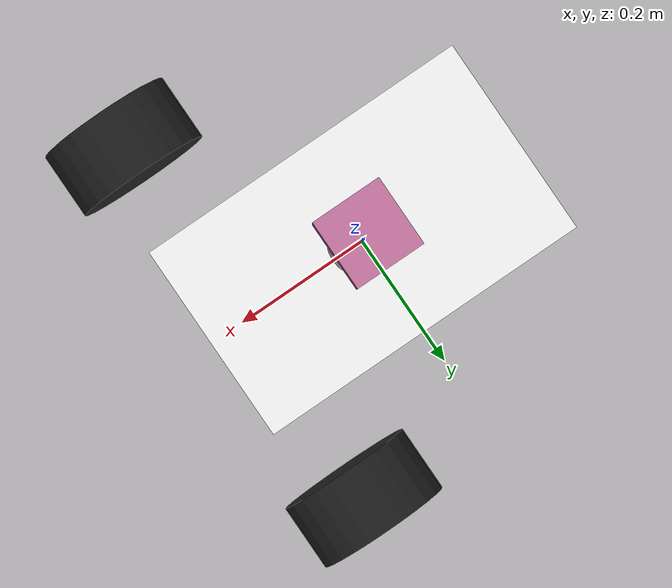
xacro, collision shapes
<?xml version="1.0"?>
<robot name="slave" xmlns:xacro="http://ros.org/wiki/xacro">

	<xacro:macro name="default_inertia" params="mass">
		<inertial>
			<origin xyz="0 0 0" rpy="0 0 0"/>
			<mass value="${mass}" />
			<inertia ixx="0.1" ixy="0.0" ixz="0.0" iyy="0.1" iyz="0.0" izz="0.1"/>
		</inertial>
	</xacro:macro>

	<material name="white">
	    <color rgba="1 1 1 1"/>
	</material>

	<!-- Base Link -->
	<link name="base_link">
		<visual>
			<geometry>
				<box size="0.5 0.3 0.1"/>
			</geometry>
			<material name="white"/>
		</visual>
		<collision>
			<geometry>
				<box size="0.5 0.3 0.1"/>
			</geometry>
		</collision>
		<xacro:default_inertia mass="10"/>
	</link>

	<!-- Laser -->
	<link name="laser">
		<visual>
			<geometry>
				<cylinder length="0.3" radius="0.05"/>
			</geometry>
			<material name="white"/>
		</visual>
		<collision>
			<geometry>
				<cylinder length="0.3" radius="0.05"/>
			</geometry>
		</collision>
		<xacro:default_inertia mass="0.1"/>
	</link>

	<joint name="base_to_laser" type="fixed">
		<parent link="base_link"/>
		<child link="laser"/>
		<origin xyz="0 0 0.2"/>
	</joint>

	<!-- Depth Cam -->
	<link name="depth_cam_link">
		<visual>
			<geometry>
				<mesh filename="package://model/meshes/depth_cam.dae"/>
			</geometry>
			<material name="black"/>
		</visual>
		<collision>
			<geometry>
				<box size="0 0 0"/>
			</geometry>
		</collision>
		<xacro:default_inertia mass="0.1"/>
	</link>

	<joint name="base_to_cam" type="fixed">
		<parent link="base_link"/>
		<child link="depth_cam_link"/>
		<origin xyz="0.2 0 0.1"/>
	</joint>

	<!-- Wheels -->
	<xacro:macro name="wheel" params="name">
		<link name="${name}">
			<visual>
				<geometry>
					<cylinder length="0.1" radius="0.1"/>
				</geometry>
				<material name="black"/>
			</visual>
			<collision>
				<geometry>
					<cylinder length="0.1" radius="0.1"/>
				</geometry>
			</collision>
			<xacro:default_inertia mass="0.01"/>
		</link>
	</xacro:macro>

	<xacro:macro name="joint_wheel" params="child x y">
		<joint name="${child}_joint" type="continuous">
			<parent link="base_link"/>
			<child link="${child}"/>
			<origin xyz="${x} ${y} -0.1" rpy="-1.57075 0 0"/>
			<axis xyz="0 0 1"/>
		</joint>
	</xacro:macro>

	<xacro:wheel name="wheel_1"/>
	<xacro:joint_wheel child="wheel_1" x="0.2" y="0.3"/>

	<xacro:wheel name="wheel_2"/>
	<xacro:joint_wheel child="wheel_2" x="0.2" y="-0.3"/>

	<xacro:wheel name="wheel_3"/>
	<xacro:joint_wheel child="wheel_3" x="-0.1" y="0"/>

	 <!-- /Wheels -->

	<!-- LASER -->
	<joint name="hokuyo_joint" type="fixed">
		<axis xyz="0 1 0"/>
		<origin xyz="0 0 0.15"/>
		<parent link="laser"/>
		<child link="hokuyo_link"/>
	</joint>

	<!--Hokuyo Laser-->
	<link name="hokuyo_link">
		<collision>
			<origin xyz="0 0 0" rpy="0 0 0"/>
			<geometry>
				<box size="0.1 0.1 0.1"/>
			</geometry>
		</collision>
		<visual>
			<origin xyz="0 0 0" rpy="0 0 0"/>
			<geometry>
				<mesh filename="package://model/meshes/hokuyo.dae"/>
			</geometry>
		</visual>

		<inertial>
			<mass value="1e-5"/>
			<origin xyz="0 0 0" rpy="0 0 0"/>
			<inertia ixx="1e-6" ixy="1e-6" ixz="1e-6" iyy="1e-6" iyz="1e-6" izz="1e-6"/>
		</inertial>
	</link>

	<!-- hokuyo -->
	<gazebo reference="hokuyo_link">
		<sensor name="head_hokuyo_senser" type="ray">
			<pose>0 0 0 0 0 0</pose>
			<visualize>false</visualize>
			<update_rate>40</update_rate>
			<ray>
				<scan>
					<horizontal>
						<samples>720</samples>
						<resolution>1</resolution>
						<min_angle>-1.570796</min_angle>
						<max_angle>1.570796</max_angle>
					</horizontal>
				</scan>
				<range>
					<min>0.1</min>
					<max>30.0</max>
					<resolution>0.01</resolution>
				</range>
				<noise>
					<type>gaussian</type>
					<mean>0.0</mean>
					<stddev>0.01</stddev>
				</noise>
			</ray>
			<plugin name="gazebo_ros_head_hokuyo_controller" filename="libgazebo_ros_laser.so">
				<topicName>slave/laser/scan</topicName>
				<frameName>hokuyo_link</frameName>
			</plugin>
		</sensor>
	</gazebo>

	<!-- Depth Cam -->
	<gazebo reference="depth_cam_link">
		<sensor name="depth_cam_sensor" type="depth">
			<always_on>true</always_on>
			<update_rate>6.0</update_rate>
			<camera>
				<horizontal_fov>1.01229096616</horizontal_fov>
				<image>
					<format>R8G8B8</format>
					<widht>320</widht>
					<height>240</height>
				</image>
				<clip>
					<near>0.05</near>
					<far>4.0</far>
				</clip>
			</camera>
			<plugin filename="libgazebo_ros_openni_kinect.so" name="depth_cam_plugin">
				<alwaysOn>true</alwaysOn>
				<update_rate>6.0</update_rate>
				<cameraName>depth_cam</cameraName>
				<imageTopicName>ir/image_raw</imageTopicName>
				<cameraTopicName>ir/camera_info</cameraTopicName>
				<depthImageTopicName>depth/image_raw</depthImageTopicName>
				<depthImageCameraInfoTopicName>depth/camera_info</depthImageCameraInfoTopicName>
				<pointCloudTopicName>depth/points</pointCloudTopicName>
				<frameName>depth_cam_link</frameName>
				<pointCloudCutoff>0.05</pointCloudCutoff>
				<pointCloudCutoffMax>5</pointCloudCutoffMax>
				<rangeMax>4.0</rangeMax>
			</plugin>
		</sensor>
	</gazebo>

	<!-- Ros Control -->
	<gazebo>
		<plugin name="gazebo_ros_control" filename="libgazebo_ros_control.so">
			<robotNamespace>/slave</robotNamespace>
		</plugin>

		<plugin name="differential_drive_controller" filename="libgazebo_ros_diff_drive.so">
			<legacyMode>false</legacyMode>
			<alwaysOn>true</alwaysOn>
			<publishWhellTF>true</publishWhellTF>
			<publishTf>1</publishTf>
			<publishWheelJointState>true</publishWheelJointState>
			<updateRate>100.0</updateRate>
			<leftJoint>wheel_1_joint</leftJoint>
			<rightJoint>wheel_2_joint</rightJoint>
			<wheelSeparation>0.6</wheelSeparation>
			<wheelDiameter>0.2</wheelDiameter>
			<wheelAcceleration>1.0</wheelAcceleration>
			<torgue>20</torgue>
			<commandTopic>/slave/cmd_vel</commandTopic>
			<odometryTopic>odom</odometryTopic>
			<odometryFrame>odom</odometryFrame>
			<publishWheelTf>true</publishWheelTf>
			<robotBaseFrame>base_link</robotBaseFrame>
		</plugin>

	</gazebo>
</robot>
